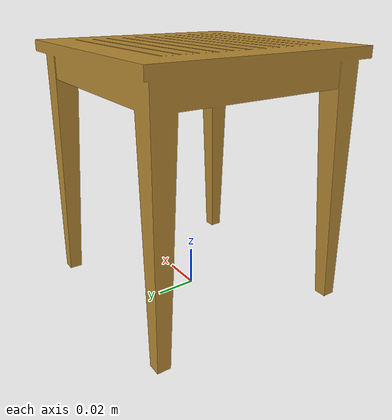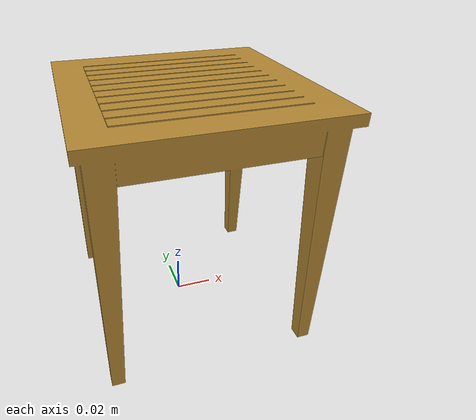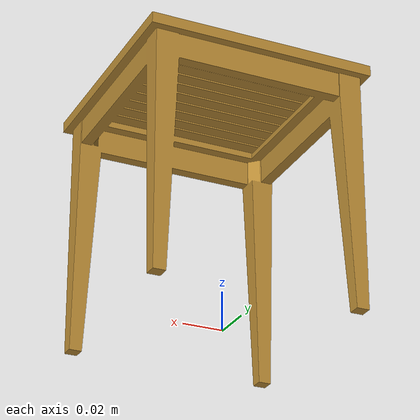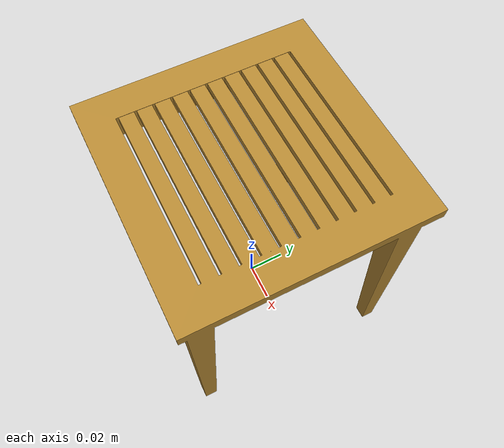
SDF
<?xml version="1.0" ?>
<sdf version="1.4">
  <model name="custom_table">

    <static>false</static>

    <link name="link">

      <inertial>
        <pose>0 0 0 0 0 0</pose>
        <mass>1</mass>
        <inertia>
          <ixx>10</ixx><ixy>0</ixy><ixz>0</ixz>
          <iyy>10</iyy><iyz>0</iyz>
          <izz>1</izz>
        </inertia>
      </inertial>

      <visual name="visual">
        <pose>-0.05 0.05 0 0 0 0</pose>
        <cast_shadows>false</cast_shadows>
        <geometry>
          <mesh>
            <uri>model://custom_table/meshes/model.dae</uri>
            <scale>0.2 0.2 0.2</scale>
          </mesh>
        </geometry>
      </visual>

      <collision name="collision_stick_01">
        <pose>-0.046924 -0.053794 0.058451 0 0 0</pose>
        <geometry>
          <box>
            <size>0.007356 0.007005 0.116773</size>
          </box>
        </geometry>
      </collision>

      <collision name="collision_stick_02">
        <pose>-0.046924 0.04653 0.058451 0 0 0</pose>
        <geometry>
          <box>
            <size>0.007356 0.007005 0.116773</size>
          </box>
        </geometry>
      </collision>

      <collision name="collision_stick_03">
        <pose>0.053471 0.04653 0.058451 0 0 0</pose>
        <geometry>
          <box>
            <size>0.007356 0.007005 0.116773</size>
          </box>
        </geometry>
      </collision>

      <collision name="collision_stick_03">
        <pose>0.053471 -0.053256 0.058451 0 0 0</pose>
        <geometry>
          <box>
            <size>0.007356 0.007005 0.116773</size>
          </box>
        </geometry>
      </collision>

      <collision name="collision_top">
        <pose>0.004 -0.004 0.118734 0 0 0</pose>
        <geometry>
          <box>
            <size>0.1145 0.1145 0.018</size>
          </box>
        </geometry>
      </collision>

      <collision name="collision_bottom">
        <pose>0.004 -0.004 0.01 0 0 0</pose>
        <geometry>
          <box>
            <size>0.1145 0.1145 0.018</size>
          </box>
        </geometry>
      </collision>

    </link>
  </model>
</sdf>
